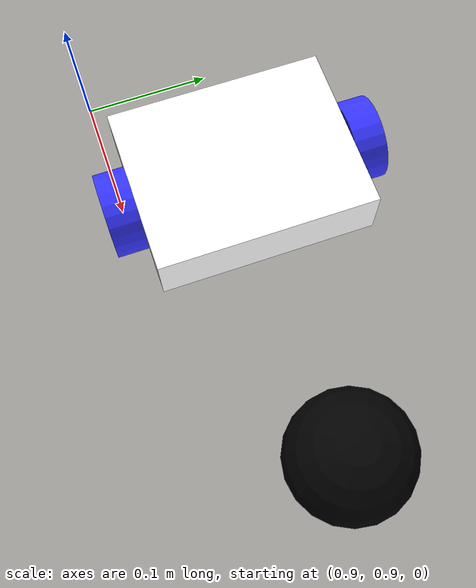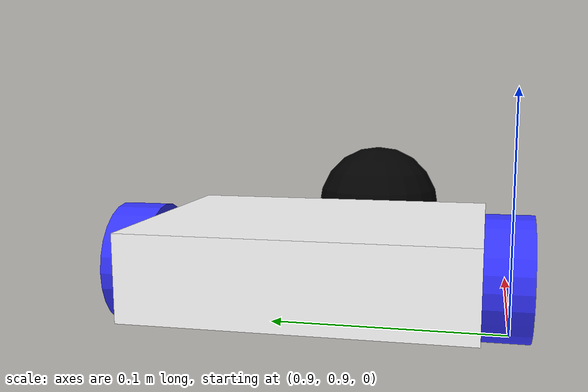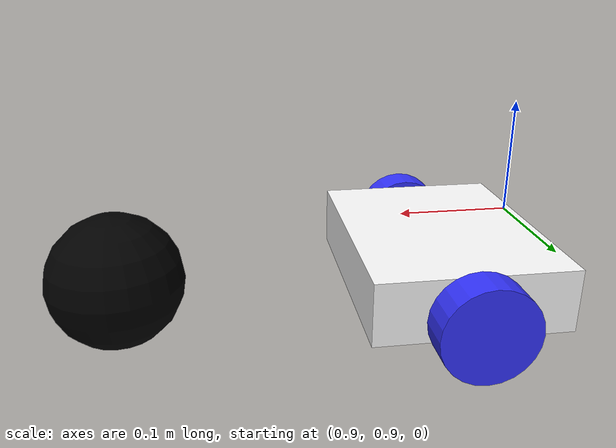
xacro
<?xml version="1.0"?>
<robot xmlns:xacro="http://www.ros.org/wiki/xacro" >

    <xacro:include filename="inertial_macros.xacro"/>

    <material name="white">
        <color rgba="1 1 1 1" />
    </material>

    <material name="orange">
        <color rgba="1 0.3 0.1 1" />
    </material>

    <material name="blue">
        <color rgba="0.2 0.2 1 1" />
    </material>

    <material name="red">
        <color rgba="1 0 0 1" />
    </material>

    <material name="black">
        <color rgba="0 0 0 1" />
    </material>

    <!-- BASE LINK  -->

    <link name="base_link">

    </link>

    <!--  CHASSIS LINK  -->
    <joint name="chassis_joint" type="fixed">
        <parent link="base_link"/>
        <child link="chassis"/>
        <origin xyz="1 1 0"/>
    </joint>

    <link name="chassis">
        <visual>
            <origin xyz="0 0 0.007"/>
            <geometry>
                <box size="0.140 0.1778 0.0455"/>
            </geometry>
            <material name="white"/>
        </visual>
        <collision>
            <origin xyz="0.15 0 0.075"/>
            <geometry>
                <box size="0.140 0.1778 0.0455"/>
            </geometry>
        </collision>
        <xacro:inertial_box mass="0.5" x="0.140" y="0.1778" z="0.0455">
            <origin xyz="0.15 0 0.075" rpy="0 0 0"/>
        </xacro:inertial_box>
    </link>

    <gazebo reference="chassis">
        <material>Gazebo/White</material>
    </gazebo>

    <!--  LEFT WHEEL LINK  -->
    <joint name="left_wheel_joint" type="continuous">
        <parent link="chassis"/>
        <child link="left_wheel"/>
        <origin xyz="0 0.1016 0" rpy="-${pi/2} 0 0"/>
        <axis xyz="0 0 1"/>
    </joint>

    <link name="left_wheel">
        <visual>
            <geometry>
                <cylinder radius="0.034" length="0.0254"/>
            </geometry>
            <material name="blue"/>
        </visual>
        <collision>
            <geometry>
                <cylinder radius="0.034" length="0.0254"/>
            </geometry>
        </collision>
        <xacro:inertial_cylinder mass="0.1" length="0.0254" radius="0.034">
            <origin xyz="0 0 0.027" rpy="0 0 0"/>
        </xacro:inertial_cylinder>
    </link>

    <gazebo reference="left_wheel">
        <material>Gazebo/Blue</material>
    </gazebo>

    <!--  RIGHT WHEEL LINK  -->
    <joint name="right_wheel_joint" type="continuous">
        <parent link="chassis"/>
        <child link="right_wheel"/>
        <origin xyz="0 -0.1016 0" rpy="${pi/2} 0 0"/>
        <axis xyz="0 0 -1"/>
    </joint>

    <link name="right_wheel">
        <visual>
            <geometry>
                <cylinder radius="0.034" length="0.0254"/>
            </geometry>
            <material name="blue"/>
        </visual>
        <collision>
            <geometry>
                <cylinder radius="0.034" length="0.0254"/>
            </geometry>
        </collision>
        <xacro:inertial_cylinder mass="0.1" length="0.0254" radius="0.034">
            <origin xyz="0 0 0.027" rpy="0 0 0"/>
        </xacro:inertial_cylinder>
    </link>

    <gazebo reference="right_wheel">
        <material>Gazebo/Blue</material>
    </gazebo>

    <!--  CASTER WHEEL LINK-->
    <joint name="caster_wheel_joint" type="fixed">
        <parent link="chassis"/>
        <child link="caster_wheel"/>
        <origin xyz="0.24 0 0"/>
    </joint>

    <link name="caster_wheel">
        <visual>
            <geometry>
                <sphere radius="0.05"/>
            </geometry>
            <material name="black"/>
        </visual>
        <collision>
            <geometry>
                <sphere radius="0.05"/>
            </geometry>
        </collision>
        <xacro:inertial_sphere mass="0.1" radius="0.05">
            <origin xyz="0 0 0" rpy="0 0 0"/>
        </xacro:inertial_sphere>
    </link>

    <gazebo reference="caster_wheel">
        <material>Gazebo/Black</material>
        <mu1 value="0.001"/>
        <mu2 value="0.001"/>

    </gazebo>

</robot>
